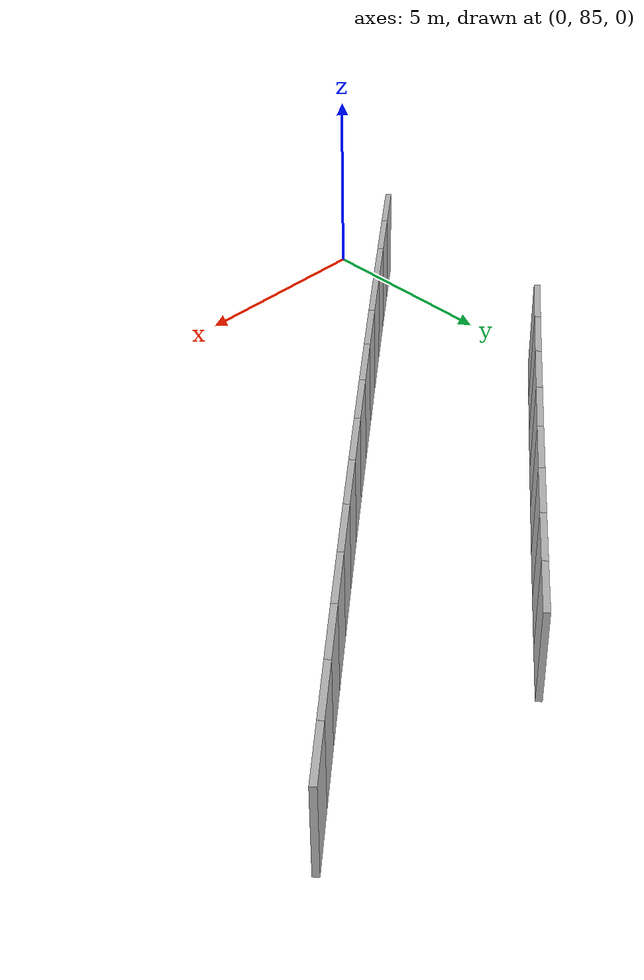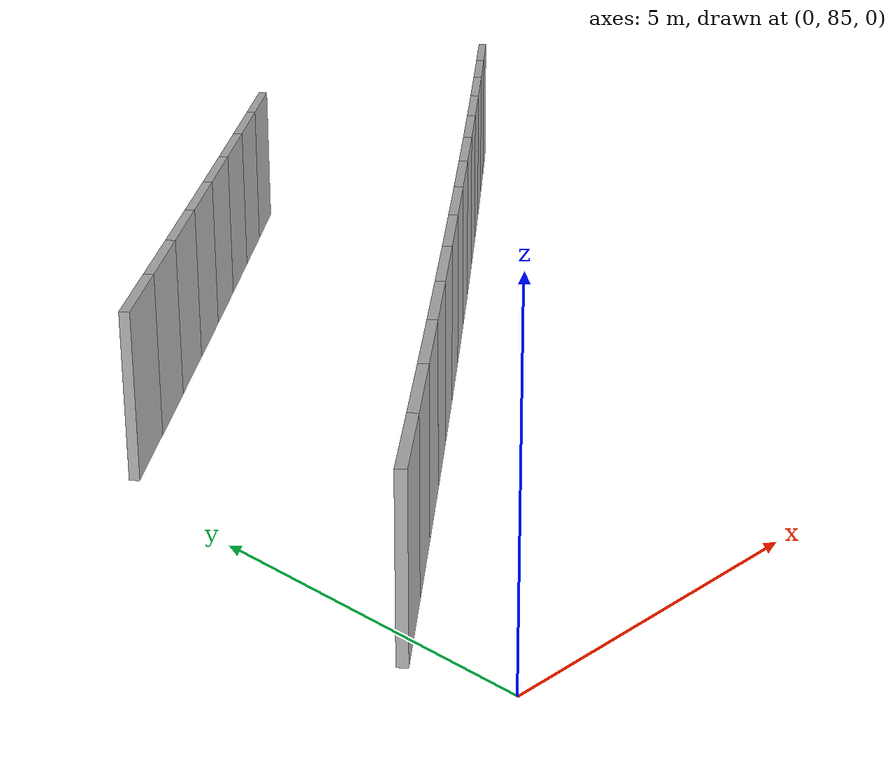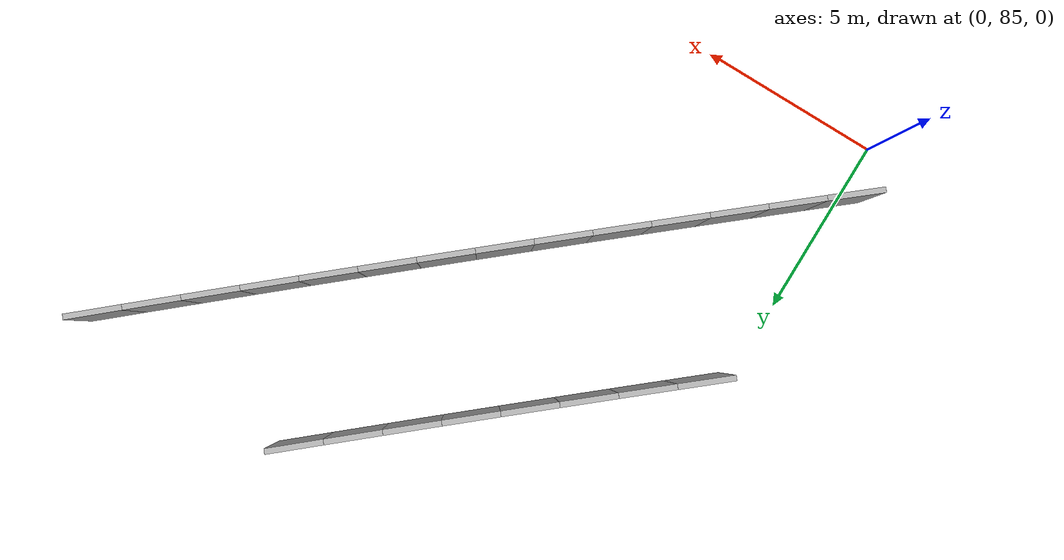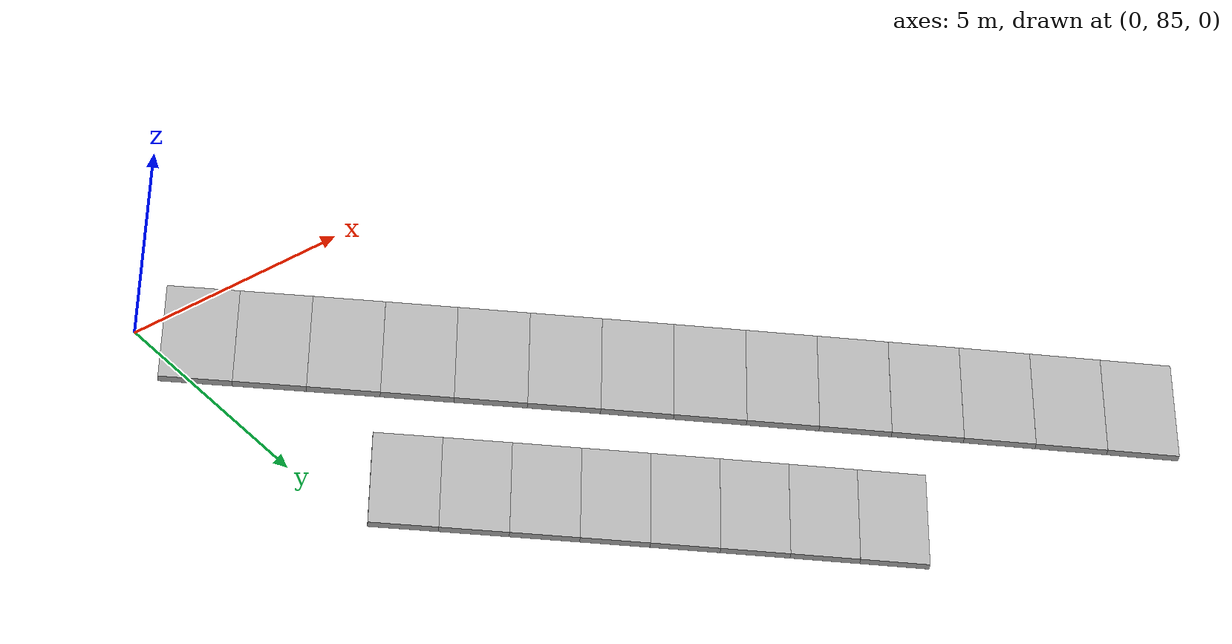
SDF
<?xml version="1.0" ?>
<sdf version="1.6">
  <model name="sps_1903">
    <pose frame="">0 0 0 0 -0 0</pose>
    <static>1</static>
    <self_collide>0</self_collide>
    <allow_auto_disable>0</allow_auto_disable>
    <link name="Wall4148">
      <kinematic>0</kinematic>
      <gravity>1</gravity>
      <self_collide>0</self_collide>
      <collision name="collision">
        <geometry>
          <box>
            <size>1.4967 0.15 2.5</size>
          </box>
        </geometry>
        <pose frame="">0 0 0 0 -0 0</pose>
      </collision>
      <visual name="visual">
        <geometry>
          <box>
            <size>1.4967 0.15 2.5</size>
          </box>
        </geometry>
        <pose frame="">0 0 0 0 -0 0</pose>
        <cast_shadows>1</cast_shadows>
        <transparency>0.0</transparency>
      </visual>
      <pose frame="">0.858451 92.8754 1.25 0 -0 0.702805</pose>
    </link>
    <link name="Wall4149">
      <kinematic>0</kinematic>
      <gravity>1</gravity>
      <self_collide>0</self_collide>
      <collision name="collision">
        <geometry>
          <box>
            <size>1.49647 0.15 2.5</size>
          </box>
        </geometry>
        <pose frame="">0 0 0 0 -0 0</pose>
      </collision>
      <visual name="visual">
        <geometry>
          <box>
            <size>1.49647 0.15 2.5</size>
          </box>
        </geometry>
        <pose frame="">0 0 0 0 -0 0</pose>
        <cast_shadows>1</cast_shadows>
        <transparency>0.0</transparency>
      </visual>
      <pose frame="">1.99966 93.8436 1.25 0 -0 0.704326</pose>
    </link>
    <link name="Wall4150">
      <kinematic>0</kinematic>
      <gravity>1</gravity>
      <self_collide>0</self_collide>
      <collision name="collision">
        <geometry>
          <box>
            <size>1.49657 0.15 2.5</size>
          </box>
        </geometry>
        <pose frame="">0 0 0 0 -0 0</pose>
      </collision>
      <visual name="visual">
        <geometry>
          <box>
            <size>1.49657 0.15 2.5</size>
          </box>
        </geometry>
        <pose frame="">0 0 0 0 -0 0</pose>
        <cast_shadows>1</cast_shadows>
        <transparency>0.0</transparency>
      </visual>
      <pose frame="">3.13924 94.8136 1.25 0 -0 0.706038</pose>
    </link>
    <link name="Wall4151">
      <kinematic>0</kinematic>
      <gravity>1</gravity>
      <self_collide>0</self_collide>
      <collision name="collision">
        <geometry>
          <box>
            <size>1.49653 0.15 2.5</size>
          </box>
        </geometry>
        <pose frame="">0 0 0 0 -0 0</pose>
      </collision>
      <visual name="visual">
        <geometry>
          <box>
            <size>1.49653 0.15 2.5</size>
          </box>
        </geometry>
        <pose frame="">0 0 0 0 -0 0</pose>
        <cast_shadows>1</cast_shadows>
        <transparency>0.0</transparency>
      </visual>
      <pose frame="">4.27734 95.7854 1.25 0 -0 0.707454</pose>
    </link>
    <link name="Wall4152">
      <kinematic>0</kinematic>
      <gravity>1</gravity>
      <self_collide>0</self_collide>
      <collision name="collision">
        <geometry>
          <box>
            <size>1.49649 0.15 2.5</size>
          </box>
        </geometry>
        <pose frame="">0 0 0 0 -0 0</pose>
      </collision>
      <visual name="visual">
        <geometry>
          <box>
            <size>1.49649 0.15 2.5</size>
          </box>
        </geometry>
        <pose frame="">0 0 0 0 -0 0</pose>
        <cast_shadows>1</cast_shadows>
        <transparency>0.0</transparency>
      </visual>
      <pose frame="">5.41384 96.759 1.25 0 -0 0.709246</pose>
    </link>
    <link name="Wall4153">
      <kinematic>0</kinematic>
      <gravity>1</gravity>
      <self_collide>0</self_collide>
      <collision name="collision">
        <geometry>
          <box>
            <size>1.49646 0.15 2.5</size>
          </box>
        </geometry>
        <pose frame="">0 0 0 0 -0 0</pose>
      </collision>
      <visual name="visual">
        <geometry>
          <box>
            <size>1.49646 0.15 2.5</size>
          </box>
        </geometry>
        <pose frame="">0 0 0 0 -0 0</pose>
        <cast_shadows>1</cast_shadows>
        <transparency>0.0</transparency>
      </visual>
      <pose frame="">6.54876 97.7344 1.25 0 -0 0.710661</pose>
    </link>
    <link name="Wall4154">
      <kinematic>0</kinematic>
      <gravity>1</gravity>
      <self_collide>0</self_collide>
      <collision name="collision">
        <geometry>
          <box>
            <size>1.49641 0.15 2.5</size>
          </box>
        </geometry>
        <pose frame="">0 0 0 0 -0 0</pose>
      </collision>
      <visual name="visual">
        <geometry>
          <box>
            <size>1.49641 0.15 2.5</size>
          </box>
        </geometry>
        <pose frame="">0 0 0 0 -0 0</pose>
        <cast_shadows>1</cast_shadows>
        <transparency>0.0</transparency>
      </visual>
      <pose frame="">7.68215 98.7115 1.25 0 -0 0.712307</pose>
    </link>
    <link name="Wall4155">
      <kinematic>0</kinematic>
      <gravity>1</gravity>
      <self_collide>0</self_collide>
      <collision name="collision">
        <geometry>
          <box>
            <size>1.49667 0.15 2.5</size>
          </box>
        </geometry>
        <pose frame="">0 0 0 0 -0 0</pose>
      </collision>
      <visual name="visual">
        <geometry>
          <box>
            <size>1.49667 0.15 2.5</size>
          </box>
        </geometry>
        <pose frame="">0 0 0 0 -0 0</pose>
        <cast_shadows>1</cast_shadows>
        <transparency>0.0</transparency>
      </visual>
      <pose frame="">8.81405 99.6905 1.25 0 -0 0.713881</pose>
    </link>
    <link name="Wall7920">
      <kinematic>0</kinematic>
      <gravity>1</gravity>
      <self_collide>0</self_collide>
      <collision name="collision">
        <geometry>
          <box>
            <size>1.50312 0.15 2.5</size>
          </box>
        </geometry>
        <pose frame="">0 0 0 0 -0 0</pose>
      </collision>
      <visual name="visual">
        <geometry>
          <box>
            <size>1.50312 0.15 2.5</size>
          </box>
        </geometry>
        <pose frame="">0 0 0 0 -0 0</pose>
        <cast_shadows>1</cast_shadows>
        <transparency>0.0</transparency>
      </visual>
      <pose frame="">0.0878518 86.8105 1.25 0 -0 0.697972</pose>
    </link>
    <link name="Wall7921">
      <kinematic>0</kinematic>
      <gravity>1</gravity>
      <self_collide>0</self_collide>
      <collision name="collision">
        <geometry>
          <box>
            <size>1.5032 0.15 2.5</size>
          </box>
        </geometry>
        <pose frame="">0 0 0 0 -0 0</pose>
      </collision>
      <visual name="visual">
        <geometry>
          <box>
            <size>1.5032 0.15 2.5</size>
          </box>
        </geometry>
        <pose frame="">0 0 0 0 -0 0</pose>
        <cast_shadows>1</cast_shadows>
        <transparency>0.0</transparency>
      </visual>
      <pose frame="">1.23867 87.7775 1.25 0 -0 0.699677</pose>
    </link>
    <link name="Wall7922">
      <kinematic>0</kinematic>
      <gravity>1</gravity>
      <self_collide>0</self_collide>
      <collision name="collision">
        <geometry>
          <box>
            <size>1.5031 0.15 2.5</size>
          </box>
        </geometry>
        <pose frame="">0 0 0 0 -0 0</pose>
      </collision>
      <visual name="visual">
        <geometry>
          <box>
            <size>1.5031 0.15 2.5</size>
          </box>
        </geometry>
        <pose frame="">0 0 0 0 -0 0</pose>
        <cast_shadows>1</cast_shadows>
        <transparency>0.0</transparency>
      </visual>
      <pose frame="">2.38796 88.7463 1.25 0 -0 0.701112</pose>
    </link>
    <link name="Wall7923">
      <kinematic>0</kinematic>
      <gravity>1</gravity>
      <self_collide>0</self_collide>
      <collision name="collision">
        <geometry>
          <box>
            <size>1.50305 0.15 2.5</size>
          </box>
        </geometry>
        <pose frame="">0 0 0 0 -0 0</pose>
      </collision>
      <visual name="visual">
        <geometry>
          <box>
            <size>1.50305 0.15 2.5</size>
          </box>
        </geometry>
        <pose frame="">0 0 0 0 -0 0</pose>
        <cast_shadows>1</cast_shadows>
        <transparency>0.0</transparency>
      </visual>
      <pose frame="">3.53564 89.7169 1.25 0 -0 0.702896</pose>
    </link>
    <link name="Wall7924">
      <kinematic>0</kinematic>
      <gravity>1</gravity>
      <self_collide>0</self_collide>
      <collision name="collision">
        <geometry>
          <box>
            <size>1.50306 0.15 2.5</size>
          </box>
        </geometry>
        <pose frame="">0 0 0 0 -0 0</pose>
      </collision>
      <visual name="visual">
        <geometry>
          <box>
            <size>1.50306 0.15 2.5</size>
          </box>
        </geometry>
        <pose frame="">0 0 0 0 -0 0</pose>
        <cast_shadows>1</cast_shadows>
        <transparency>0.0</transparency>
      </visual>
      <pose frame="">4.68175 90.6893 1.25 0 -0 0.704279</pose>
    </link>
    <link name="Wall7925">
      <kinematic>0</kinematic>
      <gravity>1</gravity>
      <self_collide>0</self_collide>
      <collision name="collision">
        <geometry>
          <box>
            <size>1.50307 0.15 2.5</size>
          </box>
        </geometry>
        <pose frame="">0 0 0 0 -0 0</pose>
      </collision>
      <visual name="visual">
        <geometry>
          <box>
            <size>1.50307 0.15 2.5</size>
          </box>
        </geometry>
        <pose frame="">0 0 0 0 -0 0</pose>
        <cast_shadows>1</cast_shadows>
        <transparency>0.0</transparency>
      </visual>
      <pose frame="">5.82638 91.6635 1.25 0 -0 0.705979</pose>
    </link>
    <link name="Wall7926">
      <kinematic>0</kinematic>
      <gravity>1</gravity>
      <self_collide>0</self_collide>
      <collision name="collision">
        <geometry>
          <box>
            <size>1.503 0.15 2.5</size>
          </box>
        </geometry>
        <pose frame="">0 0 0 0 -0 0</pose>
      </collision>
      <visual name="visual">
        <geometry>
          <box>
            <size>1.503 0.15 2.5</size>
          </box>
        </geometry>
        <pose frame="">0 0 0 0 -0 0</pose>
        <cast_shadows>1</cast_shadows>
        <transparency>0.0</transparency>
      </visual>
      <pose frame="">6.96935 92.6396 1.25 0 -0 0.707618</pose>
    </link>
    <link name="Wall7927">
      <kinematic>0</kinematic>
      <gravity>1</gravity>
      <self_collide>0</self_collide>
      <collision name="collision">
        <geometry>
          <box>
            <size>1.50329 0.15 2.5</size>
          </box>
        </geometry>
        <pose frame="">0 0 0 0 -0 0</pose>
      </collision>
      <visual name="visual">
        <geometry>
          <box>
            <size>1.50329 0.15 2.5</size>
          </box>
        </geometry>
        <pose frame="">0 0 0 0 -0 0</pose>
        <cast_shadows>1</cast_shadows>
        <transparency>0.0</transparency>
      </visual>
      <pose frame="">8.11083 93.6176 1.25 0 -0 0.709216</pose>
    </link>
    <link name="Wall7928">
      <kinematic>0</kinematic>
      <gravity>1</gravity>
      <self_collide>0</self_collide>
      <collision name="collision">
        <geometry>
          <box>
            <size>1.50301 0.15 2.5</size>
          </box>
        </geometry>
        <pose frame="">0 0 0 0 -0 0</pose>
      </collision>
      <visual name="visual">
        <geometry>
          <box>
            <size>1.50301 0.15 2.5</size>
          </box>
        </geometry>
        <pose frame="">0 0 0 0 -0 0</pose>
        <cast_shadows>1</cast_shadows>
        <transparency>0.0</transparency>
      </visual>
      <pose frame="">9.25085 94.5973 1.25 0 -0 0.710613</pose>
    </link>
    <link name="Wall7929">
      <kinematic>0</kinematic>
      <gravity>1</gravity>
      <self_collide>0</self_collide>
      <collision name="collision">
        <geometry>
          <box>
            <size>1.50307 0.15 2.5</size>
          </box>
        </geometry>
        <pose frame="">0 0 0 0 -0 0</pose>
      </collision>
      <visual name="visual">
        <geometry>
          <box>
            <size>1.50307 0.15 2.5</size>
          </box>
        </geometry>
        <pose frame="">0 0 0 0 -0 0</pose>
        <cast_shadows>1</cast_shadows>
        <transparency>0.0</transparency>
      </visual>
      <pose frame="">10.3892 95.5787 1.25 0 -0 0.712344</pose>
    </link>
    <link name="Wall7930">
      <kinematic>0</kinematic>
      <gravity>1</gravity>
      <self_collide>0</self_collide>
      <collision name="collision">
        <geometry>
          <box>
            <size>1.50296 0.15 2.5</size>
          </box>
        </geometry>
        <pose frame="">0 0 0 0 -0 0</pose>
      </collision>
      <visual name="visual">
        <geometry>
          <box>
            <size>1.50296 0.15 2.5</size>
          </box>
        </geometry>
        <pose frame="">0 0 0 0 -0 0</pose>
        <cast_shadows>1</cast_shadows>
        <transparency>0.0</transparency>
      </visual>
      <pose frame="">11.5261 96.5619 1.25 0 -0 0.713806</pose>
    </link>
    <link name="Wall7931">
      <kinematic>0</kinematic>
      <gravity>1</gravity>
      <self_collide>0</self_collide>
      <collision name="collision">
        <geometry>
          <box>
            <size>1.50299 0.15 2.5</size>
          </box>
        </geometry>
        <pose frame="">0 0 0 0 -0 0</pose>
      </collision>
      <visual name="visual">
        <geometry>
          <box>
            <size>1.50299 0.15 2.5</size>
          </box>
        </geometry>
        <pose frame="">0 0 0 0 -0 0</pose>
        <cast_shadows>1</cast_shadows>
        <transparency>0.0</transparency>
      </visual>
      <pose frame="">12.6613 97.5469 1.25 0 -0 0.715506</pose>
    </link>
    <link name="Wall7932">
      <kinematic>0</kinematic>
      <gravity>1</gravity>
      <self_collide>0</self_collide>
      <collision name="collision">
        <geometry>
          <box>
            <size>1.50313 0.15 2.5</size>
          </box>
        </geometry>
        <pose frame="">0 0 0 0 -0 0</pose>
      </collision>
      <visual name="visual">
        <geometry>
          <box>
            <size>1.50313 0.15 2.5</size>
          </box>
        </geometry>
        <pose frame="">0 0 0 0 -0 0</pose>
        <cast_shadows>1</cast_shadows>
        <transparency>0.0</transparency>
      </visual>
      <pose frame="">13.795 98.5338 1.25 0 -0 0.717039</pose>
    </link>
    <link name="Wall7933">
      <kinematic>0</kinematic>
      <gravity>1</gravity>
      <self_collide>0</self_collide>
      <collision name="collision">
        <geometry>
          <box>
            <size>1.50314 0.15 2.5</size>
          </box>
        </geometry>
        <pose frame="">0 0 0 0 -0 0</pose>
      </collision>
      <visual name="visual">
        <geometry>
          <box>
            <size>1.50314 0.15 2.5</size>
          </box>
        </geometry>
        <pose frame="">0 0 0 0 -0 0</pose>
        <cast_shadows>1</cast_shadows>
        <transparency>0.0</transparency>
      </visual>
      <pose frame="">14.9272 99.5225 1.25 0 -0 0.71865</pose>
    </link>
  </model>
</sdf>
